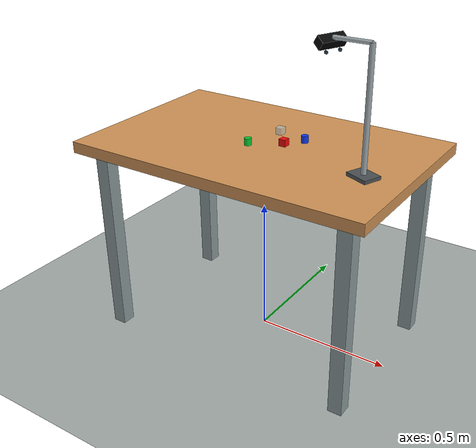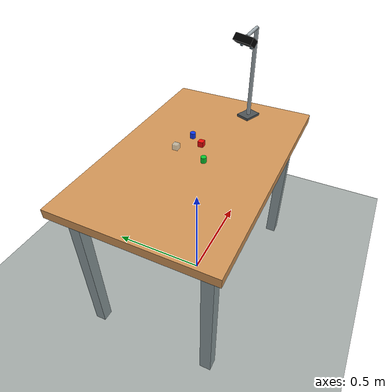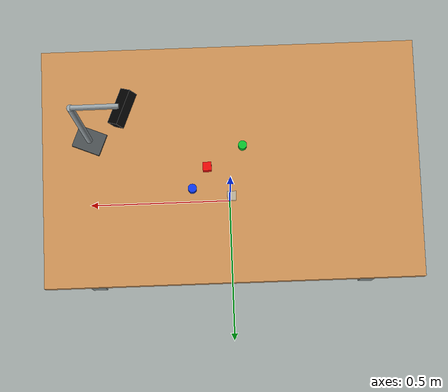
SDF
<sdf version="1.9">
 <world name="ghost_mgg_m2_visual">
  <plugin filename="gz-sim-physics-system" name="gz::sim::systems::Physics"/>
  <plugin filename="gz-sim-sensors-system" name="gz::sim::systems::Sensors">
   <render_engine>ogre2</render_engine>
  </plugin>
  <plugin filename="gz-sim-user-commands-system" name="gz::sim::systems::UserCommands"/>
  <plugin filename="gz-sim-scene-broadcaster-system" name="gz::sim::systems::SceneBroadcaster"/>
  <scene>
   <ambient>0.55 0.58 0.62 1</ambient>
   <background>0.78 0.84 0.90 1</background>
   <shadows>false</shadows>
  </scene>
  <light name="key_light" type="directional">
   <pose>-1.5 -2.0 4.0 0 0 0</pose>
   <cast_shadows>false</cast_shadows>
   <diffuse>0.95 0.92 0.86 1</diffuse>
   <specular>0.35 0.35 0.35 1</specular>
   <direction>-0.55 0.18 -1.0</direction>
  </light>
  <model name="ground_plane">
   <static>true</static>
   <link name="ground_link">
    <collision name="ground_collision">
     <geometry><plane><normal>0 0 1</normal><size>5 5</size></plane></geometry>
    </collision>
    <visual name="ground_visual">
     <geometry><plane><normal>0 0 1</normal><size>5 5</size></plane></geometry>
     <material><ambient>0.50 0.53 0.52 1</ambient><diffuse>0.64 0.67 0.66 1</diffuse></material>
    </visual>
   </link>
  </model>
  <include><name>table</name><uri>model://table</uri></include>
  <include>
   <name>d435_stand_only</name>
   <uri>model://d435_stand_only</uri>
   <pose>0.410788 -0.079176 0.740000 0 0 -0.386880</pose>
  </include>
  <include>
   <name>d435_camera_head</name>
   <uri>model://d435_camera_head</uri>
   <pose>0.286775 -0.079936 1.105590 0 0.950000 2.754700</pose>
  </include>
  <include>
   <name>red_cube</name>
   <uri>model://red_cube</uri>
   <pose>0.070172 0.012156 0.752500 0 0 0</pose>
  </include>
  <include>
   <name>blue_cylinder</name>
   <uri>model://blue_cylinder</uri>
   <pose>0.115000 0.075000 0.752500 0 0 0</pose>
  </include>
  <include>
   <name>green_cylinder</name>
   <uri>model://green_cylinder</uri>
   <pose>-0.035000 -0.047344 0.752500 0 0 0</pose>
  </include>
  <include>
   <name>glass_block</name>
   <uri>model://glass_block</uri>
   <pose>0.002000 0.100000 0.752500 0 0 0</pose>
  </include>
 </world>
</sdf>

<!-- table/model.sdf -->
<sdf version="1.9">
  <model name="table">
    <static>true</static>

    <link name="table_link">
      <visual name="top_visual">
        <pose>0 0 0.72 0 0 0</pose>
        <geometry>
          <box>
            <size>1.10 0.70 0.04</size>
          </box>
        </geometry>
        <material>
          <ambient>0.70 0.48 0.28 1</ambient>
          <diffuse>0.82 0.58 0.34 1</diffuse>
          <specular>0.15 0.12 0.08 1</specular>
        </material>
      </visual>
      <collision name="top_collision">
        <pose>0 0 0.72 0 0 0</pose>
        <geometry>
          <box>
            <size>1.10 0.70 0.04</size>
          </box>
        </geometry>
        <surface>
          <friction>
            <ode>
              <mu>1.2</mu>
              <mu2>1.2</mu2>
            </ode>
          </friction>
          <contact>
            <ode>
              <kp>1000000.0</kp>
              <kd>10.0</kd>
            </ode>
          </contact>
        </surface>
      </collision>

      <visual name="leg_front_left_visual">
        <pose>0.47 0.28 0.35 0 0 0</pose>
        <geometry>
          <box>
            <size>0.05 0.05 0.70</size>
          </box>
        </geometry>
        <material>
          <ambient>0.44 0.49 0.50 1</ambient>
          <diffuse>0.55 0.61 0.62 1</diffuse>
          <specular>0.25 0.25 0.25 1</specular>
        </material>
      </visual>
      <collision name="leg_front_left_collision">
        <pose>0.47 0.28 0.35 0 0 0</pose>
        <geometry>
          <box>
            <size>0.05 0.05 0.70</size>
          </box>
        </geometry>
      </collision>

      <visual name="leg_front_right_visual">
        <pose>0.47 -0.28 0.35 0 0 0</pose>
        <geometry>
          <box>
            <size>0.05 0.05 0.70</size>
          </box>
        </geometry>
        <material>
          <ambient>0.44 0.49 0.50 1</ambient>
          <diffuse>0.55 0.61 0.62 1</diffuse>
          <specular>0.25 0.25 0.25 1</specular>
        </material>
      </visual>
      <collision name="leg_front_right_collision">
        <pose>0.47 -0.28 0.35 0 0 0</pose>
        <geometry>
          <box>
            <size>0.05 0.05 0.70</size>
          </box>
        </geometry>
      </collision>

      <visual name="leg_back_left_visual">
        <pose>-0.47 0.28 0.35 0 0 0</pose>
        <geometry>
          <box>
            <size>0.05 0.05 0.70</size>
          </box>
        </geometry>
        <material>
          <ambient>0.44 0.49 0.50 1</ambient>
          <diffuse>0.55 0.61 0.62 1</diffuse>
          <specular>0.25 0.25 0.25 1</specular>
        </material>
      </visual>
      <collision name="leg_back_left_collision">
        <pose>-0.47 0.28 0.35 0 0 0</pose>
        <geometry>
          <box>
            <size>0.05 0.05 0.70</size>
          </box>
        </geometry>
      </collision>

      <visual name="leg_back_right_visual">
        <pose>-0.47 -0.28 0.35 0 0 0</pose>
        <geometry>
          <box>
            <size>0.05 0.05 0.70</size>
          </box>
        </geometry>
        <material>
          <ambient>0.44 0.49 0.50 1</ambient>
          <diffuse>0.55 0.61 0.62 1</diffuse>
          <specular>0.25 0.25 0.25 1</specular>
        </material>
      </visual>
      <collision name="leg_back_right_collision">
        <pose>-0.47 -0.28 0.35 0 0 0</pose>
        <geometry>
          <box>
            <size>0.05 0.05 0.70</size>
          </box>
        </geometry>
      </collision>
    </link>
  </model>
</sdf>

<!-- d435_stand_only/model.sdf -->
<sdf version="1.9">
  <model name="d435_stand_only">
    <static>true</static>

    <link name="stand_link">
      <visual name="tabletop_base_visual">
        <pose>0 0 0.006 0 0 0</pose>
        <geometry>
          <box>
            <size>0.085 0.065 0.012</size>
          </box>
        </geometry>
        <material>
          <ambient>0.18 0.19 0.20 1</ambient>
          <diffuse>0.30 0.32 0.33 1</diffuse>
          <specular>0.25 0.25 0.25 1</specular>
        </material>
      </visual>
      <collision name="tabletop_base_collision">
        <pose>0 0 0.006 0 0 0</pose>
        <geometry>
          <box>
            <size>0.085 0.065 0.012</size>
          </box>
        </geometry>
      </collision>

      <visual name="short_pole_visual">
        <pose>0 0 0.207 0 0 0</pose>
        <geometry>
          <cylinder>
            <radius>0.009</radius>
            <length>0.405</length>
          </cylinder>
        </geometry>
        <material>
          <ambient>0.45 0.48 0.50 1</ambient>
          <diffuse>0.62 0.66 0.68 1</diffuse>
          <specular>0.35 0.35 0.35 1</specular>
        </material>
      </visual>
      <collision name="short_pole_collision">
        <pose>0 0 0.207 0 0 0</pose>
        <geometry>
          <cylinder>
            <radius>0.009</radius>
            <length>0.405</length>
          </cylinder>
        </geometry>
      </collision>

      <visual name="short_support_arm_visual">
        <pose>-0.0573 -0.0237 0.4086 0 1.5708 -2.7485</pose>
        <geometry>
          <cylinder>
            <radius>0.007</radius>
            <length>0.124</length>
          </cylinder>
        </geometry>
        <material>
          <ambient>0.45 0.48 0.50 1</ambient>
          <diffuse>0.62 0.66 0.68 1</diffuse>
          <specular>0.35 0.35 0.35 1</specular>
        </material>
      </visual>
      <collision name="short_support_arm_collision">
        <pose>-0.0573 -0.0237 0.4086 0 1.5708 -2.7485</pose>
        <geometry>
          <cylinder>
            <radius>0.007</radius>
            <length>0.124</length>
          </cylinder>
        </geometry>
      </collision>
    </link>
  </model>
</sdf>

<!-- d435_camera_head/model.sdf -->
<sdf version="1.9">
  <model name="d435_camera_head">
    <static>true</static>

    <link name="camera_link">
      <visual name="downward_camera_head_visual">
        <pose>-0.020 0 0.025 0 0 0</pose>
        <geometry>
          <box>
            <size>0.030 0.095 0.032</size>
          </box>
        </geometry>
        <material>
          <ambient>0.01 0.01 0.01 1</ambient>
          <diffuse>0.02 0.02 0.02 1</diffuse>
          <specular>0.14 0.14 0.14 1</specular>
        </material>
      </visual>
      <collision name="downward_camera_head_collision">
        <pose>-0.020 0 0.025 0 0 0</pose>
        <geometry>
          <box>
            <size>0.030 0.095 0.032</size>
          </box>
        </geometry>
      </collision>

      <visual name="lens_down_left_visual">
        <pose>-0.004 -0.026 0.000 0 1.5708 0</pose>
        <geometry>
          <cylinder>
            <radius>0.006</radius>
            <length>0.004</length>
          </cylinder>
        </geometry>
        <material>
          <ambient>0.03 0.07 0.09 1</ambient>
          <diffuse>0.04 0.12 0.16 1</diffuse>
          <specular>0.30 0.30 0.30 1</specular>
        </material>
      </visual>

      <visual name="lens_down_right_visual">
        <pose>-0.004 0.026 0.000 0 1.5708 0</pose>
        <geometry>
          <cylinder>
            <radius>0.006</radius>
            <length>0.004</length>
          </cylinder>
        </geometry>
        <material>
          <ambient>0.03 0.07 0.09 1</ambient>
          <diffuse>0.04 0.12 0.16 1</diffuse>
          <specular>0.30 0.30 0.30 1</specular>
        </material>
      </visual>

      <sensor name="target_rgb_camera" type="camera">
        <pose>0 0 0 0 0 0</pose>
        <camera>
          <horizontal_fov>0.72</horizontal_fov>
          <image>
            <width>640</width>
            <height>480</height>
            <format>R8G8B8</format>
          </image>
          <clip>
            <near>0.02</near>
            <far>2.0</far>
          </clip>
        </camera>
        <always_on>1</always_on>
        <update_rate>10</update_rate>
        <visualize>true</visualize>
        <topic>ghost_mgg/d435/color/image_raw</topic>
      </sensor>

      <sensor name="target_depth_camera" type="depth_camera">
        <pose>0 0 0 0 0 0</pose>
        <camera>
          <horizontal_fov>0.72</horizontal_fov>
          <image>
            <width>640</width>
            <height>480</height>
            <format>R_FLOAT32</format>
          </image>
          <clip>
            <near>0.02</near>
            <far>2.0</far>
          </clip>
        </camera>
        <always_on>1</always_on>
        <update_rate>10</update_rate>
        <visualize>false</visualize>
        <topic>ghost_mgg/d435/depth/image_rect_raw</topic>
      </sensor>

      <sensor name="target_infra1_camera" type="camera">
        <pose>0 -0.026 0 0 0 0</pose>
        <camera>
          <horizontal_fov>0.72</horizontal_fov>
          <image>
            <width>640</width>
            <height>480</height>
            <format>L8</format>
          </image>
          <clip>
            <near>0.02</near>
            <far>2.0</far>
          </clip>
        </camera>
        <always_on>1</always_on>
        <update_rate>10</update_rate>
        <visualize>false</visualize>
        <topic>ghost_mgg/d435/infra1/image_rect_raw</topic>
      </sensor>

      <sensor name="target_infra2_camera" type="camera">
        <pose>0 0.026 0 0 0 0</pose>
        <camera>
          <horizontal_fov>0.72</horizontal_fov>
          <image>
            <width>640</width>
            <height>480</height>
            <format>L8</format>
          </image>
          <clip>
            <near>0.02</near>
            <far>2.0</far>
          </clip>
        </camera>
        <always_on>1</always_on>
        <update_rate>10</update_rate>
        <visualize>false</visualize>
        <topic>ghost_mgg/d435/infra2/image_rect_raw</topic>
      </sensor>
    </link>
  </model>
</sdf>

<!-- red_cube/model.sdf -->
<sdf version="1.9">
  <model name="red_cube">
    <static>false</static>
    <link name="red_cube_link">
      <inertial>
        <mass>0.020</mass>
        <inertia>
          <ixx>0.0000021</ixx>
          <iyy>0.0000021</iyy>
          <izz>0.0000021</izz>
        </inertia>
      </inertial>
      <visual name="red_cube_visual">
        <geometry>
          <box>
            <size>0.025 0.025 0.025</size>
          </box>
        </geometry>
        <material>
          <ambient>0.95 0.04 0.03 1</ambient>
          <diffuse>0.95 0.04 0.03 1</diffuse>
          <specular>0.25 0.08 0.06 1</specular>
        </material>
      </visual>
      <collision name="red_cube_collision">
        <geometry>
          <box>
            <size>0.025 0.025 0.025</size>
          </box>
        </geometry>
        <surface>
          <friction>
            <ode>
              <mu>1.5</mu>
              <mu2>1.5</mu2>
            </ode>
          </friction>
          <contact>
            <ode>
              <kp>1000000.0</kp>
              <kd>10.0</kd>
            </ode>
          </contact>
        </surface>
      </collision>
    </link>
  </model>
</sdf>

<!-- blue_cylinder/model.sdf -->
<sdf version="1.9">
  <model name="blue_cylinder">
    <static>false</static>
    <link name="blue_cylinder_link">
      <inertial>
        <mass>0.020</mass>
        <inertia>
          <ixx>0.0000018</ixx>
          <iyy>0.0000018</iyy>
          <izz>0.0000016</izz>
        </inertia>
      </inertial>
      <visual name="blue_cylinder_visual">
        <geometry>
          <cylinder>
            <radius>0.0125</radius>
            <length>0.025</length>
          </cylinder>
        </geometry>
        <material>
          <ambient>0.05 0.22 0.95 1</ambient>
          <diffuse>0.05 0.22 0.95 1</diffuse>
          <specular>0.08 0.12 0.35 1</specular>
        </material>
      </visual>
      <collision name="blue_cylinder_collision">
        <geometry>
          <cylinder>
            <radius>0.0125</radius>
            <length>0.025</length>
          </cylinder>
        </geometry>
        <surface>
          <friction>
            <ode>
              <mu>1.5</mu>
              <mu2>1.5</mu2>
            </ode>
          </friction>
          <contact>
            <ode>
              <kp>1000000.0</kp>
              <kd>10.0</kd>
            </ode>
          </contact>
        </surface>
      </collision>
    </link>
  </model>
</sdf>

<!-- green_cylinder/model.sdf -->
<sdf version="1.9">
  <model name="green_cylinder">
    <static>false</static>
    <link name="green_cylinder_link">
      <inertial>
        <mass>0.020</mass>
        <inertia>
          <ixx>0.0000018</ixx>
          <iyy>0.0000018</iyy>
          <izz>0.0000016</izz>
        </inertia>
      </inertial>
      <visual name="green_cylinder_visual">
        <geometry>
          <cylinder>
            <radius>0.0125</radius>
            <length>0.025</length>
          </cylinder>
        </geometry>
        <material>
          <ambient>0.04 0.78 0.18 1</ambient>
          <diffuse>0.04 0.78 0.18 1</diffuse>
          <specular>0.06 0.25 0.08 1</specular>
        </material>
      </visual>
      <collision name="green_cylinder_collision">
        <geometry>
          <cylinder>
            <radius>0.0125</radius>
            <length>0.025</length>
          </cylinder>
        </geometry>
        <surface>
          <friction>
            <ode>
              <mu>1.5</mu>
              <mu2>1.5</mu2>
            </ode>
          </friction>
          <contact>
            <ode>
              <kp>1000000.0</kp>
              <kd>10.0</kd>
            </ode>
          </contact>
        </surface>
      </collision>
    </link>
  </model>
</sdf>

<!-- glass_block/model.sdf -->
<sdf version="1.9">
  <model name="glass_block">
    <static>false</static>
    <link name="glass_block_link">
      <inertial>
        <mass>0.020</mass>
        <inertia>
          <ixx>0.0000021</ixx>
          <iyy>0.0000021</iyy>
          <izz>0.0000021</izz>
        </inertia>
      </inertial>
      <visual name="glass_block_visual">
        <geometry>
          <box>
            <size>0.025 0.025 0.025</size>
          </box>
        </geometry>
        <material>
          <ambient>0.70 0.90 1.00 0.45</ambient>
          <diffuse>0.70 0.90 1.00 0.45</diffuse>
          <specular>0.95 0.95 1.00 1</specular>
        </material>
        <transparency>0.55</transparency>
      </visual>
      <collision name="glass_block_collision">
        <geometry>
          <box>
            <size>0.025 0.025 0.025</size>
          </box>
        </geometry>
        <surface>
          <friction>
            <ode>
              <mu>1.5</mu>
              <mu2>1.5</mu2>
            </ode>
          </friction>
          <contact>
            <ode>
              <kp>1000000.0</kp>
              <kd>10.0</kd>
            </ode>
          </contact>
        </surface>
      </collision>
    </link>
  </model>
</sdf>
